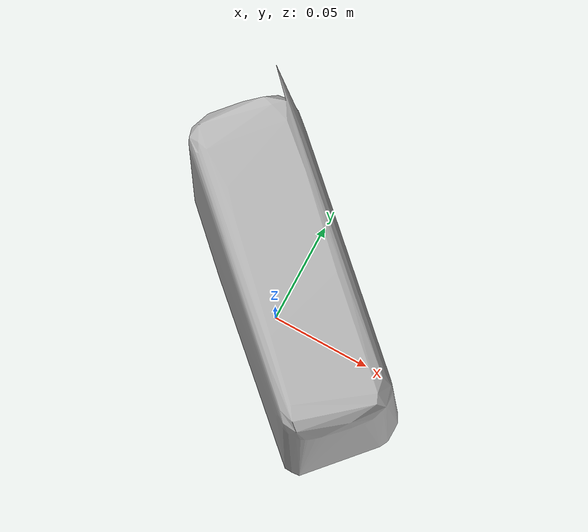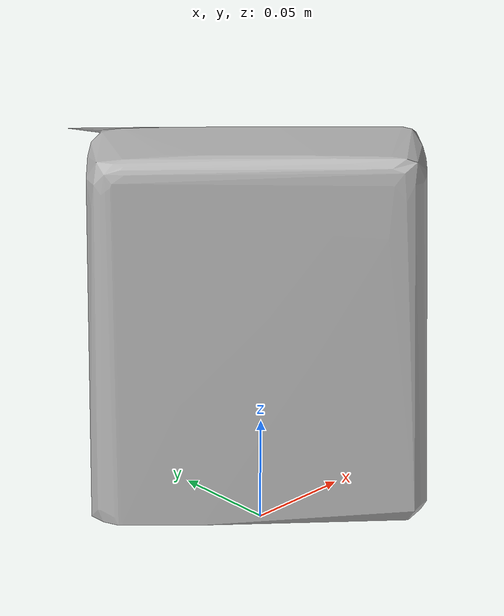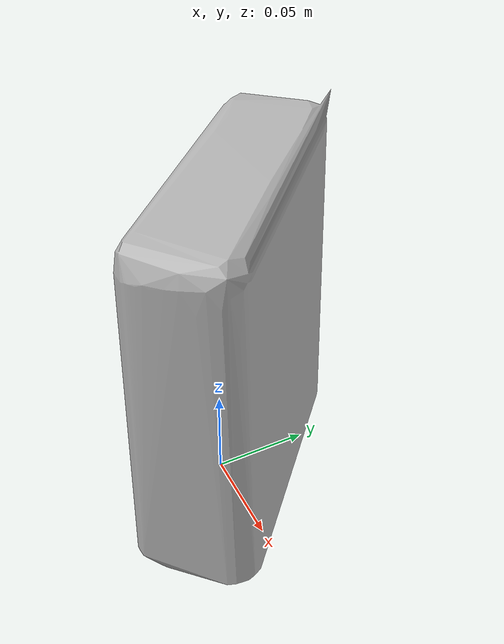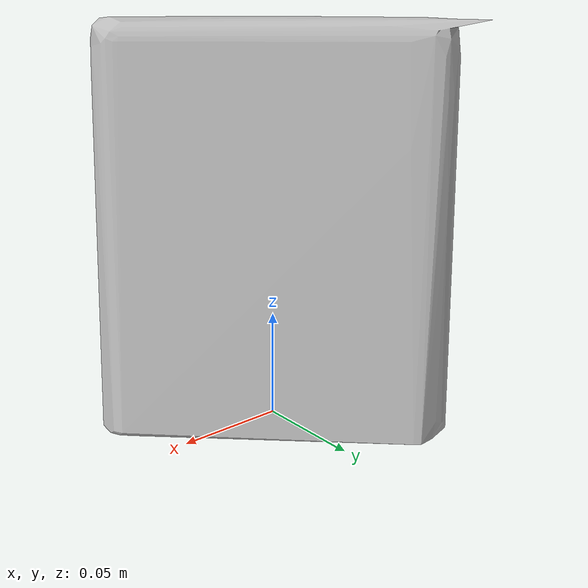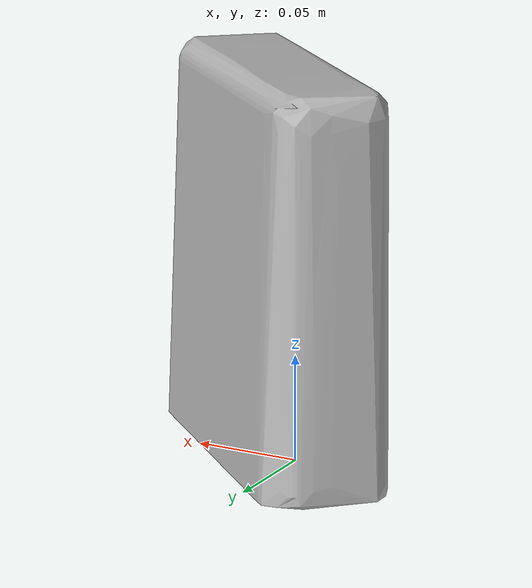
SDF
<?xml version='1.0'?>
<sdf version="1.4">
  <model name="motts_original_assorted_fruit">
    <static>false</static>
    <link name="link">
      <inertial>
        <pose>0.0053533913725563355 0.0075067528789185285 0.09292791947452193 -3.1296440098908835 0.012044450983173867 -2.320492838370119</pose>
        <mass>0.15113951936694536</mass>
        <inertia>
          <ixx>0.0006900934764262761</ixx>
          <ixy>-9.753908656562559e-20</ixy>
          <ixz>8.4121050874851535e-22</ixz>
          <iyy>0.00044017588181220936</iyy>
          <iyz>3.478044032494923e-20</iyz>
          <izz>0.000326161710245764</izz>
        </inertia>
      </inertial>
      <collision name="collision">
        <geometry>
          <mesh>
            <!-- Use a downsampled mesh for collisions -->
            <uri>model:///motts_original_assorted_fruit/motts_original_assorted_fruit_250_collision.obj</uri>
	        </mesh>
        </geometry>
        <surface>
      </surface>
      </collision>
      <visual name="visual">
        <geometry>
          <mesh>
            <uri>model:///motts_original_assorted_fruit/optimized_tsdf_texture_mapped_mesh.obj</uri>
	        </mesh>
        </geometry>
        <material>
          <script>
            <uri>model:///motts_original_assorted_fruit/motts_original_assorted_fruit.material</uri>
            <name>motts_original_assorted_fruit</name>
          </script>
        </material>
      </visual>
    </link>
  </model>
</sdf>
